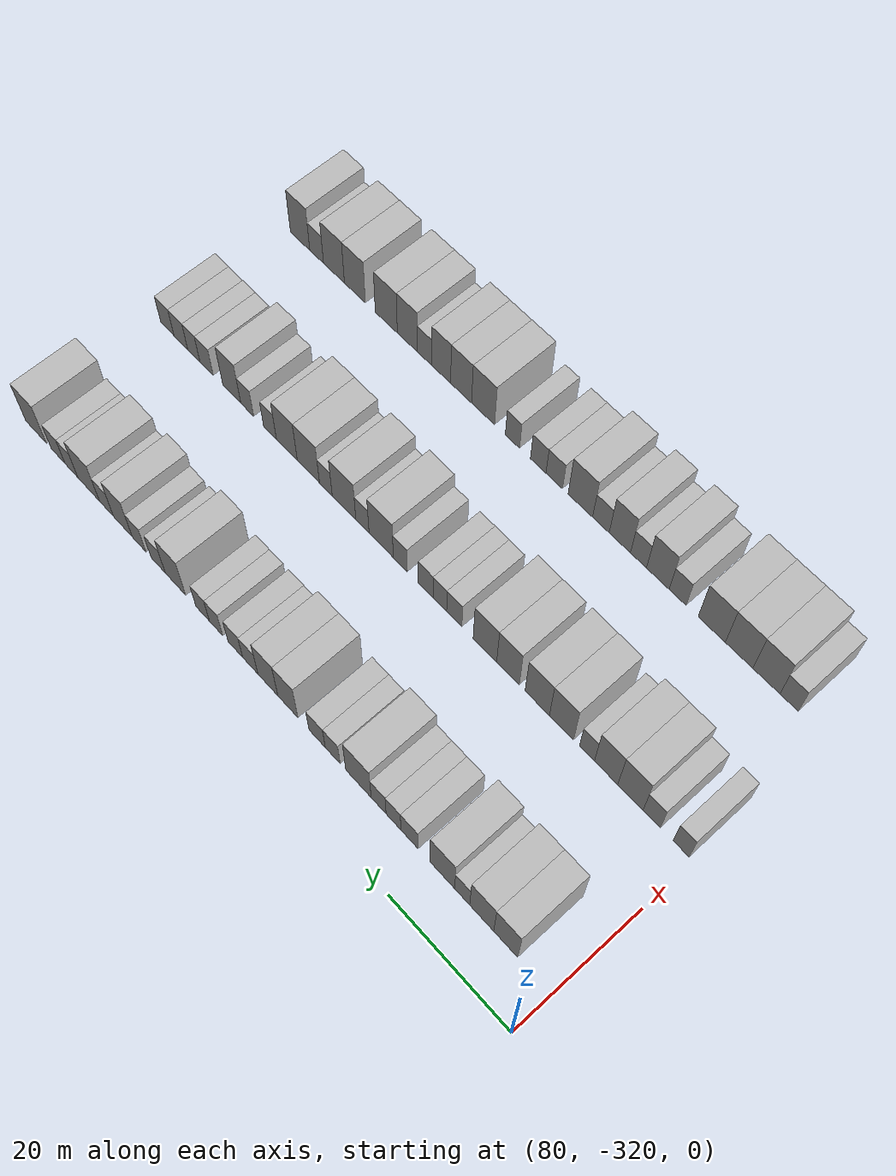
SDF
<sdf version="1.6">
 <world name="default">
  <model name="building_571">
   <static>1</static>
   <pose>91.0000 -312.6917 0 0.000000 0.000000 0.000000</pose>
   <link name="link">
    <pose>0 0 4.50 0 0 0</pose>
    <collision name="collision"><geometry><box><size>10.0000 3.8526 9.0000</size></box></geometry></collision>
    <visual name="visual">
     <cast_shadows>0</cast_shadows>
     <geometry><box><size>10.0000 3.8526 9.0000</size></box></geometry>
     <material>
      <script>
       <uri>model://HANNAS_wall/materials/scripts</uri>
       <uri>model://HANNAS_wall/materials/textures</uri>
       <name>vrc/HANNAS_wall</name>
      </script>
     </material>
    </visual>
   </link>
  </model>
  <model name="building_572">
   <static>1</static>
   <pose>91.0000 -308.8206 0 0.000000 0.000000 0.000000</pose>
   <link name="link">
    <pose>0 0 4.50 0 0 0</pose>
    <collision name="collision"><geometry><box><size>10.0000 3.8896 9.0000</size></box></geometry></collision>
    <visual name="visual">
     <cast_shadows>0</cast_shadows>
     <geometry><box><size>10.0000 3.8896 9.0000</size></box></geometry>
     <material>
      <script>
       <uri>model://HANNAS_wall/materials/scripts</uri>
       <uri>model://HANNAS_wall/materials/textures</uri>
       <name>vrc/HANNAS_wall</name>
      </script>
     </material>
    </visual>
   </link>
  </model>
  <model name="building_573">
   <static>1</static>
   <pose>91.0000 -305.6409 0 0.000000 0.000000 0.000000</pose>
   <link name="link">
    <pose>0 0 3.00 0 0 0</pose>
    <collision name="collision"><geometry><box><size>10.0000 2.4698 6.0000</size></box></geometry></collision>
    <visual name="visual">
     <cast_shadows>0</cast_shadows>
     <geometry><box><size>10.0000 2.4698 6.0000</size></box></geometry>
     <material>
      <script>
       <uri>model://HANNAS_wall/materials/scripts</uri>
       <uri>model://HANNAS_wall/materials/textures</uri>
       <name>vrc/HANNAS_wall</name>
      </script>
     </material>
    </visual>
   </link>
  </model>
  <model name="building_574">
   <static>1</static>
   <pose>91.0000 -302.3667 0 0.000000 0.000000 0.000000</pose>
   <link name="link">
    <pose>0 0 4.50 0 0 0</pose>
    <collision name="collision"><geometry><box><size>10.0000 4.0787 9.0000</size></box></geometry></collision>
    <visual name="visual">
     <cast_shadows>0</cast_shadows>
     <geometry><box><size>10.0000 4.0787 9.0000</size></box></geometry>
     <material>
      <script>
       <uri>model://HANNAS_wall/materials/scripts</uri>
       <uri>model://HANNAS_wall/materials/textures</uri>
       <name>vrc/HANNAS_wall</name>
      </script>
     </material>
    </visual>
   </link>
  </model>
  <model name="building_575">
   <static>1</static>
   <pose>91.0000 -296.8645 0 0.000000 0.000000 0.000000</pose>
   <link name="link">
    <pose>0 0 3.00 0 0 0</pose>
    <collision name="collision"><geometry><box><size>10.0000 2.9255 6.0000</size></box></geometry></collision>
    <visual name="visual">
     <cast_shadows>0</cast_shadows>
     <geometry><box><size>10.0000 2.9255 6.0000</size></box></geometry>
     <material>
      <script>
       <uri>model://HANNAS_wall/materials/scripts</uri>
       <uri>model://HANNAS_wall/materials/textures</uri>
       <name>vrc/HANNAS_wall</name>
      </script>
     </material>
    </visual>
   </link>
  </model>
  <model name="building_576">
   <static>1</static>
   <pose>91.0000 -294.1377 0 0.000000 0.000000 0.000000</pose>
   <link name="link">
    <pose>0 0 3.00 0 0 0</pose>
    <collision name="collision"><geometry><box><size>10.0000 2.5281 6.0000</size></box></geometry></collision>
    <visual name="visual">
     <cast_shadows>0</cast_shadows>
     <geometry><box><size>10.0000 2.5281 6.0000</size></box></geometry>
     <material>
      <script>
       <uri>model://HANNAS_wall/materials/scripts</uri>
       <uri>model://HANNAS_wall/materials/textures</uri>
       <name>vrc/HANNAS_wall</name>
      </script>
     </material>
    </visual>
   </link>
  </model>
  <model name="building_577">
   <static>1</static>
   <pose>91.0000 -291.5876 0 0.000000 0.000000 0.000000</pose>
   <link name="link">
    <pose>0 0 3.00 0 0 0</pose>
    <collision name="collision"><geometry><box><size>10.0000 2.5721 6.0000</size></box></geometry></collision>
    <visual name="visual">
     <cast_shadows>0</cast_shadows>
     <geometry><box><size>10.0000 2.5721 6.0000</size></box></geometry>
     <material>
      <script>
       <uri>model://HANNAS_wall/materials/scripts</uri>
       <uri>model://HANNAS_wall/materials/textures</uri>
       <name>vrc/HANNAS_wall</name>
      </script>
     </material>
    </visual>
   </link>
  </model>
  <model name="building_578">
   <static>1</static>
   <pose>91.0000 -288.0837 0 0.000000 0.000000 0.000000</pose>
   <link name="link">
    <pose>0 0 4.50 0 0 0</pose>
    <collision name="collision"><geometry><box><size>10.0000 4.4356 9.0000</size></box></geometry></collision>
    <visual name="visual">
     <cast_shadows>0</cast_shadows>
     <geometry><box><size>10.0000 4.4356 9.0000</size></box></geometry>
     <material>
      <script>
       <uri>model://HANNAS_wall/materials/scripts</uri>
       <uri>model://HANNAS_wall/materials/textures</uri>
       <name>vrc/HANNAS_wall</name>
      </script>
     </material>
    </visual>
   </link>
  </model>
  <model name="building_579">
   <static>1</static>
   <pose>91.0000 -283.5389 0 0.000000 0.000000 0.000000</pose>
   <link name="link">
    <pose>0 0 3.00 0 0 0</pose>
    <collision name="collision"><geometry><box><size>10.0000 2.6541 6.0000</size></box></geometry></collision>
    <visual name="visual">
     <cast_shadows>0</cast_shadows>
     <geometry><box><size>10.0000 2.6541 6.0000</size></box></geometry>
     <material>
      <script>
       <uri>model://HANNAS_wall/materials/scripts</uri>
       <uri>model://HANNAS_wall/materials/textures</uri>
       <name>vrc/HANNAS_wall</name>
      </script>
     </material>
    </visual>
   </link>
  </model>
  <model name="building_580">
   <static>1</static>
   <pose>91.0000 -280.7613 0 0.000000 0.000000 0.000000</pose>
   <link name="link">
    <pose>0 0 3.00 0 0 0</pose>
    <collision name="collision"><geometry><box><size>10.0000 2.9010 6.0000</size></box></geometry></collision>
    <visual name="visual">
     <cast_shadows>0</cast_shadows>
     <geometry><box><size>10.0000 2.9010 6.0000</size></box></geometry>
     <material>
      <script>
       <uri>model://HANNAS_wall/materials/scripts</uri>
       <uri>model://HANNAS_wall/materials/textures</uri>
       <name>vrc/HANNAS_wall</name>
      </script>
     </material>
    </visual>
   </link>
  </model>
  <model name="building_581">
   <static>1</static>
   <pose>91.0000 -275.4876 0 0.000000 0.000000 0.000000</pose>
   <link name="link">
    <pose>0 0 4.50 0 0 0</pose>
    <collision name="collision"><geometry><box><size>10.0000 3.6465 9.0000</size></box></geometry></collision>
    <visual name="visual">
     <cast_shadows>0</cast_shadows>
     <geometry><box><size>10.0000 3.6465 9.0000</size></box></geometry>
     <material>
      <script>
       <uri>model://HANNAS_wall/materials/scripts</uri>
       <uri>model://HANNAS_wall/materials/textures</uri>
       <name>vrc/HANNAS_wall</name>
      </script>
     </material>
    </visual>
   </link>
  </model>
  <model name="building_582">
   <static>1</static>
   <pose>91.0000 -271.8111 0 0.000000 0.000000 0.000000</pose>
   <link name="link">
    <pose>0 0 4.50 0 0 0</pose>
    <collision name="collision"><geometry><box><size>10.0000 3.7064 9.0000</size></box></geometry></collision>
    <visual name="visual">
     <cast_shadows>0</cast_shadows>
     <geometry><box><size>10.0000 3.7064 9.0000</size></box></geometry>
     <material>
      <script>
       <uri>model://HANNAS_wall/materials/scripts</uri>
       <uri>model://HANNAS_wall/materials/textures</uri>
       <name>vrc/HANNAS_wall</name>
      </script>
     </material>
    </visual>
   </link>
  </model>
  <model name="building_583">
   <static>1</static>
   <pose>91.0000 -268.5519 0 0.000000 0.000000 0.000000</pose>
   <link name="link">
    <pose>0 0 3.00 0 0 0</pose>
    <collision name="collision"><geometry><box><size>10.0000 2.8119 6.0000</size></box></geometry></collision>
    <visual name="visual">
     <cast_shadows>0</cast_shadows>
     <geometry><box><size>10.0000 2.8119 6.0000</size></box></geometry>
     <material>
      <script>
       <uri>model://HANNAS_wall/materials/scripts</uri>
       <uri>model://HANNAS_wall/materials/textures</uri>
       <name>vrc/HANNAS_wall</name>
      </script>
     </material>
    </visual>
   </link>
  </model>
  <model name="building_584">
   <static>1</static>
   <pose>91.0000 -265.7531 0 0.000000 0.000000 0.000000</pose>
   <link name="link">
    <pose>0 0 3.00 0 0 0</pose>
    <collision name="collision"><geometry><box><size>10.0000 2.7857 6.0000</size></box></geometry></collision>
    <visual name="visual">
     <cast_shadows>0</cast_shadows>
     <geometry><box><size>10.0000 2.7857 6.0000</size></box></geometry>
     <material>
      <script>
       <uri>model://HANNAS_wall/materials/scripts</uri>
       <uri>model://HANNAS_wall/materials/textures</uri>
       <name>vrc/HANNAS_wall</name>
      </script>
     </material>
    </visual>
   </link>
  </model>
  <model name="building_585">
   <static>1</static>
   <pose>91.0000 -262.0981 0 0.000000 0.000000 0.000000</pose>
   <link name="link">
    <pose>0 0 3.00 0 0 0</pose>
    <collision name="collision"><geometry><box><size>10.0000 2.5244 6.0000</size></box></geometry></collision>
    <visual name="visual">
     <cast_shadows>0</cast_shadows>
     <geometry><box><size>10.0000 2.5244 6.0000</size></box></geometry>
     <material>
      <script>
       <uri>model://HANNAS_wall/materials/scripts</uri>
       <uri>model://HANNAS_wall/materials/textures</uri>
       <name>vrc/HANNAS_wall</name>
      </script>
     </material>
    </visual>
   </link>
  </model>
  <model name="building_586">
   <static>1</static>
   <pose>91.0000 -259.5345 0 0.000000 0.000000 0.000000</pose>
   <link name="link">
    <pose>0 0 3.00 0 0 0</pose>
    <collision name="collision"><geometry><box><size>10.0000 2.6028 6.0000</size></box></geometry></collision>
    <visual name="visual">
     <cast_shadows>0</cast_shadows>
     <geometry><box><size>10.0000 2.6028 6.0000</size></box></geometry>
     <material>
      <script>
       <uri>model://HANNAS_wall/materials/scripts</uri>
       <uri>model://HANNAS_wall/materials/textures</uri>
       <name>vrc/HANNAS_wall</name>
      </script>
     </material>
    </visual>
   </link>
  </model>
  <model name="building_587">
   <static>1</static>
   <pose>91.0000 -254.2357 0 0.000000 0.000000 0.000000</pose>
   <link name="link">
    <pose>0 0 4.50 0 0 0</pose>
    <collision name="collision"><geometry><box><size>10.0000 3.9948 9.0000</size></box></geometry></collision>
    <visual name="visual">
     <cast_shadows>0</cast_shadows>
     <geometry><box><size>10.0000 3.9948 9.0000</size></box></geometry>
     <material>
      <script>
       <uri>model://HANNAS_wall/materials/scripts</uri>
       <uri>model://HANNAS_wall/materials/textures</uri>
       <name>vrc/HANNAS_wall</name>
      </script>
     </material>
    </visual>
   </link>
  </model>
  <model name="building_588">
   <static>1</static>
   <pose>91.0000 -250.8298 0 0.000000 0.000000 0.000000</pose>
   <link name="link">
    <pose>0 0 3.00 0 0 0</pose>
    <collision name="collision"><geometry><box><size>10.0000 2.8172 6.0000</size></box></geometry></collision>
    <visual name="visual">
     <cast_shadows>0</cast_shadows>
     <geometry><box><size>10.0000 2.8172 6.0000</size></box></geometry>
     <material>
      <script>
       <uri>model://HANNAS_wall/materials/scripts</uri>
       <uri>model://HANNAS_wall/materials/textures</uri>
       <name>vrc/HANNAS_wall</name>
      </script>
     </material>
    </visual>
   </link>
  </model>
  <model name="building_589">
   <static>1</static>
   <pose>91.0000 -247.0542 0 0.000000 0.000000 0.000000</pose>
   <link name="link">
    <pose>0 0 3.00 0 0 0</pose>
    <collision name="collision"><geometry><box><size>10.0000 2.7340 6.0000</size></box></geometry></collision>
    <visual name="visual">
     <cast_shadows>0</cast_shadows>
     <geometry><box><size>10.0000 2.7340 6.0000</size></box></geometry>
     <material>
      <script>
       <uri>model://HANNAS_wall/materials/scripts</uri>
       <uri>model://HANNAS_wall/materials/textures</uri>
       <name>vrc/HANNAS_wall</name>
      </script>
     </material>
    </visual>
   </link>
  </model>
  <model name="building_590">
   <static>1</static>
   <pose>91.0000 -243.7830 0 0.000000 0.000000 0.000000</pose>
   <link name="link">
    <pose>0 0 4.50 0 0 0</pose>
    <collision name="collision"><geometry><box><size>10.0000 3.8084 9.0000</size></box></geometry></collision>
    <visual name="visual">
     <cast_shadows>0</cast_shadows>
     <geometry><box><size>10.0000 3.8084 9.0000</size></box></geometry>
     <material>
      <script>
       <uri>model://HANNAS_wall/materials/scripts</uri>
       <uri>model://HANNAS_wall/materials/textures</uri>
       <name>vrc/HANNAS_wall</name>
      </script>
     </material>
    </visual>
   </link>
  </model>
  <model name="building_591">
   <static>1</static>
   <pose>91.0000 -240.4488 0 0.000000 0.000000 0.000000</pose>
   <link name="link">
    <pose>0 0 3.00 0 0 0</pose>
    <collision name="collision"><geometry><box><size>10.0000 2.8601 6.0000</size></box></geometry></collision>
    <visual name="visual">
     <cast_shadows>0</cast_shadows>
     <geometry><box><size>10.0000 2.8601 6.0000</size></box></geometry>
     <material>
      <script>
       <uri>model://HANNAS_wall/materials/scripts</uri>
       <uri>model://HANNAS_wall/materials/textures</uri>
       <name>vrc/HANNAS_wall</name>
      </script>
     </material>
    </visual>
   </link>
  </model>
  <model name="building_592">
   <static>1</static>
   <pose>91.0000 -236.7715 0 0.000000 0.000000 0.000000</pose>
   <link name="link">
    <pose>0 0 4.50 0 0 0</pose>
    <collision name="collision"><geometry><box><size>10.0000 4.4945 9.0000</size></box></geometry></collision>
    <visual name="visual">
     <cast_shadows>0</cast_shadows>
     <geometry><box><size>10.0000 4.4945 9.0000</size></box></geometry>
     <material>
      <script>
       <uri>model://HANNAS_wall/materials/scripts</uri>
       <uri>model://HANNAS_wall/materials/textures</uri>
       <name>vrc/HANNAS_wall</name>
      </script>
     </material>
    </visual>
   </link>
  </model>
  <model name="building_593">
   <static>1</static>
   <pose>91.0000 -233.1801 0 0.000000 0.000000 0.000000</pose>
   <link name="link">
    <pose>0 0 3.00 0 0 0</pose>
    <collision name="collision"><geometry><box><size>10.0000 2.6881 6.0000</size></box></geometry></collision>
    <visual name="visual">
     <cast_shadows>0</cast_shadows>
     <geometry><box><size>10.0000 2.6881 6.0000</size></box></geometry>
     <material>
      <script>
       <uri>model://HANNAS_wall/materials/scripts</uri>
       <uri>model://HANNAS_wall/materials/textures</uri>
       <name>vrc/HANNAS_wall</name>
      </script>
     </material>
    </visual>
   </link>
  </model>
  <model name="building_594">
   <static>1</static>
   <pose>91.0000 -230.3773 0 0.000000 0.000000 0.000000</pose>
   <link name="link">
    <pose>0 0 3.00 0 0 0</pose>
    <collision name="collision"><geometry><box><size>10.0000 2.9175 6.0000</size></box></geometry></collision>
    <visual name="visual">
     <cast_shadows>0</cast_shadows>
     <geometry><box><size>10.0000 2.9175 6.0000</size></box></geometry>
     <material>
      <script>
       <uri>model://HANNAS_wall/materials/scripts</uri>
       <uri>model://HANNAS_wall/materials/textures</uri>
       <name>vrc/HANNAS_wall</name>
      </script>
     </material>
    </visual>
   </link>
  </model>
  <model name="building_595">
   <static>1</static>
   <pose>91.0000 -225.6936 0 0.000000 0.000000 0.000000</pose>
   <link name="link">
    <pose>0 0 4.50 0 0 0</pose>
    <collision name="collision"><geometry><box><size>10.0000 4.4499 9.0000</size></box></geometry></collision>
    <visual name="visual">
     <cast_shadows>0</cast_shadows>
     <geometry><box><size>10.0000 4.4499 9.0000</size></box></geometry>
     <material>
      <script>
       <uri>model://HANNAS_wall/materials/scripts</uri>
       <uri>model://HANNAS_wall/materials/textures</uri>
       <name>vrc/HANNAS_wall</name>
      </script>
     </material>
    </visual>
   </link>
  </model>
  <model name="building_756">
   <static>1</static>
   <pose>113.0000 -318.1459 0 0.000000 0.000000 0.000000</pose>
   <link name="link">
    <pose>0 0 3.00 0 0 0</pose>
    <collision name="collision"><geometry><box><size>10.0000 2.5338 6.0000</size></box></geometry></collision>
    <visual name="visual">
     <cast_shadows>0</cast_shadows>
     <geometry><box><size>10.0000 2.5338 6.0000</size></box></geometry>
     <material>
      <script>
       <uri>model://HANNAS_wall/materials/scripts</uri>
       <uri>model://HANNAS_wall/materials/textures</uri>
       <name>vrc/HANNAS_wall</name>
      </script>
     </material>
    </visual>
   </link>
  </model>
  <model name="building_757">
   <static>1</static>
   <pose>113.0000 -313.5029 0 0.000000 0.000000 0.000000</pose>
   <link name="link">
    <pose>0 0 3.00 0 0 0</pose>
    <collision name="collision"><geometry><box><size>10.0000 2.7521 6.0000</size></box></geometry></collision>
    <visual name="visual">
     <cast_shadows>0</cast_shadows>
     <geometry><box><size>10.0000 2.7521 6.0000</size></box></geometry>
     <material>
      <script>
       <uri>model://HANNAS_wall/materials/scripts</uri>
       <uri>model://HANNAS_wall/materials/textures</uri>
       <name>vrc/HANNAS_wall</name>
      </script>
     </material>
    </visual>
   </link>
  </model>
  <model name="building_758">
   <static>1</static>
   <pose>113.0000 -310.0856 0 0.000000 0.000000 0.000000</pose>
   <link name="link">
    <pose>0 0 4.50 0 0 0</pose>
    <collision name="collision"><geometry><box><size>10.0000 4.0826 9.0000</size></box></geometry></collision>
    <visual name="visual">
     <cast_shadows>0</cast_shadows>
     <geometry><box><size>10.0000 4.0826 9.0000</size></box></geometry>
     <material>
      <script>
       <uri>model://HANNAS_wall/materials/scripts</uri>
       <uri>model://HANNAS_wall/materials/textures</uri>
       <name>vrc/HANNAS_wall</name>
      </script>
     </material>
    </visual>
   </link>
  </model>
  <model name="building_759">
   <static>1</static>
   <pose>113.0000 -306.1435 0 0.000000 0.000000 0.000000</pose>
   <link name="link">
    <pose>0 0 4.50 0 0 0</pose>
    <collision name="collision"><geometry><box><size>10.0000 3.8015 9.0000</size></box></geometry></collision>
    <visual name="visual">
     <cast_shadows>0</cast_shadows>
     <geometry><box><size>10.0000 3.8015 9.0000</size></box></geometry>
     <material>
      <script>
       <uri>model://HANNAS_wall/materials/scripts</uri>
       <uri>model://HANNAS_wall/materials/textures</uri>
       <name>vrc/HANNAS_wall</name>
      </script>
     </material>
    </visual>
   </link>
  </model>
  <model name="building_760">
   <static>1</static>
   <pose>113.0000 -303.0140 0 0.000000 0.000000 0.000000</pose>
   <link name="link">
    <pose>0 0 3.00 0 0 0</pose>
    <collision name="collision"><geometry><box><size>10.0000 2.4574 6.0000</size></box></geometry></collision>
    <visual name="visual">
     <cast_shadows>0</cast_shadows>
     <geometry><box><size>10.0000 2.4574 6.0000</size></box></geometry>
     <material>
      <script>
       <uri>model://HANNAS_wall/materials/scripts</uri>
       <uri>model://HANNAS_wall/materials/textures</uri>
       <name>vrc/HANNAS_wall</name>
      </script>
     </material>
    </visual>
   </link>
  </model>
  <model name="building_761">
   <static>1</static>
   <pose>113.0000 -298.7703 0 0.000000 0.000000 0.000000</pose>
   <link name="link">
    <pose>0 0 4.50 0 0 0</pose>
    <collision name="collision"><geometry><box><size>10.0000 4.0300 9.0000</size></box></geometry></collision>
    <visual name="visual">
     <cast_shadows>0</cast_shadows>
     <geometry><box><size>10.0000 4.0300 9.0000</size></box></geometry>
     <material>
      <script>
       <uri>model://HANNAS_wall/materials/scripts</uri>
       <uri>model://HANNAS_wall/materials/textures</uri>
       <name>vrc/HANNAS_wall</name>
      </script>
     </material>
    </visual>
   </link>
  </model>
  <model name="building_762">
   <static>1</static>
   <pose>113.0000 -294.6878 0 0.000000 0.000000 0.000000</pose>
   <link name="link">
    <pose>0 0 4.50 0 0 0</pose>
    <collision name="collision"><geometry><box><size>10.0000 4.1350 9.0000</size></box></geometry></collision>
    <visual name="visual">
     <cast_shadows>0</cast_shadows>
     <geometry><box><size>10.0000 4.1350 9.0000</size></box></geometry>
     <material>
      <script>
       <uri>model://HANNAS_wall/materials/scripts</uri>
       <uri>model://HANNAS_wall/materials/textures</uri>
       <name>vrc/HANNAS_wall</name>
      </script>
     </material>
    </visual>
   </link>
  </model>
  <model name="building_763">
   <static>1</static>
   <pose>113.0000 -289.6768 0 0.000000 0.000000 0.000000</pose>
   <link name="link">
    <pose>0 0 4.50 0 0 0</pose>
    <collision name="collision"><geometry><box><size>10.0000 3.8871 9.0000</size></box></geometry></collision>
    <visual name="visual">
     <cast_shadows>0</cast_shadows>
     <geometry><box><size>10.0000 3.8871 9.0000</size></box></geometry>
     <material>
      <script>
       <uri>model://HANNAS_wall/materials/scripts</uri>
       <uri>model://HANNAS_wall/materials/textures</uri>
       <name>vrc/HANNAS_wall</name>
      </script>
     </material>
    </visual>
   </link>
  </model>
  <model name="building_764">
   <static>1</static>
   <pose>113.0000 -285.6799 0 0.000000 0.000000 0.000000</pose>
   <link name="link">
    <pose>0 0 4.50 0 0 0</pose>
    <collision name="collision"><geometry><box><size>10.0000 4.1067 9.0000</size></box></geometry></collision>
    <visual name="visual">
     <cast_shadows>0</cast_shadows>
     <geometry><box><size>10.0000 4.1067 9.0000</size></box></geometry>
     <material>
      <script>
       <uri>model://HANNAS_wall/materials/scripts</uri>
       <uri>model://HANNAS_wall/materials/textures</uri>
       <name>vrc/HANNAS_wall</name>
      </script>
     </material>
    </visual>
   </link>
  </model>
  <model name="building_765">
   <static>1</static>
   <pose>113.0000 -280.2777 0 0.000000 0.000000 0.000000</pose>
   <link name="link">
    <pose>0 0 3.00 0 0 0</pose>
    <collision name="collision"><geometry><box><size>10.0000 2.6977 6.0000</size></box></geometry></collision>
    <visual name="visual">
     <cast_shadows>0</cast_shadows>
     <geometry><box><size>10.0000 2.6977 6.0000</size></box></geometry>
     <material>
      <script>
       <uri>model://HANNAS_wall/materials/scripts</uri>
       <uri>model://HANNAS_wall/materials/textures</uri>
       <name>vrc/HANNAS_wall</name>
      </script>
     </material>
    </visual>
   </link>
  </model>
  <model name="building_766">
   <static>1</static>
   <pose>113.0000 -277.7073 0 0.000000 0.000000 0.000000</pose>
   <link name="link">
    <pose>0 0 3.00 0 0 0</pose>
    <collision name="collision"><geometry><box><size>10.0000 2.4432 6.0000</size></box></geometry></collision>
    <visual name="visual">
     <cast_shadows>0</cast_shadows>
     <geometry><box><size>10.0000 2.4432 6.0000</size></box></geometry>
     <material>
      <script>
       <uri>model://HANNAS_wall/materials/scripts</uri>
       <uri>model://HANNAS_wall/materials/textures</uri>
       <name>vrc/HANNAS_wall</name>
      </script>
     </material>
    </visual>
   </link>
  </model>
  <model name="building_767">
   <static>1</static>
   <pose>113.0000 -275.1553 0 0.000000 0.000000 0.000000</pose>
   <link name="link">
    <pose>0 0 3.00 0 0 0</pose>
    <collision name="collision"><geometry><box><size>10.0000 2.6608 6.0000</size></box></geometry></collision>
    <visual name="visual">
     <cast_shadows>0</cast_shadows>
     <geometry><box><size>10.0000 2.6608 6.0000</size></box></geometry>
     <material>
      <script>
       <uri>model://HANNAS_wall/materials/scripts</uri>
       <uri>model://HANNAS_wall/materials/textures</uri>
       <name>vrc/HANNAS_wall</name>
      </script>
     </material>
    </visual>
   </link>
  </model>
  <model name="building_768">
   <static>1</static>
   <pose>113.0000 -270.5395 0 0.000000 0.000000 0.000000</pose>
   <link name="link">
    <pose>0 0 3.00 0 0 0</pose>
    <collision name="collision"><geometry><box><size>10.0000 2.5708 6.0000</size></box></geometry></collision>
    <visual name="visual">
     <cast_shadows>0</cast_shadows>
     <geometry><box><size>10.0000 2.5708 6.0000</size></box></geometry>
     <material>
      <script>
       <uri>model://HANNAS_wall/materials/scripts</uri>
       <uri>model://HANNAS_wall/materials/textures</uri>
       <name>vrc/HANNAS_wall</name>
      </script>
     </material>
    </visual>
   </link>
  </model>
  <model name="building_769">
   <static>1</static>
   <pose>113.0000 -267.0043 0 0.000000 0.000000 0.000000</pose>
   <link name="link">
    <pose>0 0 4.50 0 0 0</pose>
    <collision name="collision"><geometry><box><size>10.0000 4.4996 9.0000</size></box></geometry></collision>
    <visual name="visual">
     <cast_shadows>0</cast_shadows>
     <geometry><box><size>10.0000 4.4996 9.0000</size></box></geometry>
     <material>
      <script>
       <uri>model://HANNAS_wall/materials/scripts</uri>
       <uri>model://HANNAS_wall/materials/textures</uri>
       <name>vrc/HANNAS_wall</name>
      </script>
     </material>
    </visual>
   </link>
  </model>
  <model name="building_770">
   <static>1</static>
   <pose>113.0000 -263.5102 0 0.000000 0.000000 0.000000</pose>
   <link name="link">
    <pose>0 0 3.00 0 0 0</pose>
    <collision name="collision"><geometry><box><size>10.0000 2.4886 6.0000</size></box></geometry></collision>
    <visual name="visual">
     <cast_shadows>0</cast_shadows>
     <geometry><box><size>10.0000 2.4886 6.0000</size></box></geometry>
     <material>
      <script>
       <uri>model://HANNAS_wall/materials/scripts</uri>
       <uri>model://HANNAS_wall/materials/textures</uri>
       <name>vrc/HANNAS_wall</name>
      </script>
     </material>
    </visual>
   </link>
  </model>
  <model name="building_771">
   <static>1</static>
   <pose>113.0000 -260.0223 0 0.000000 0.000000 0.000000</pose>
   <link name="link">
    <pose>0 0 4.50 0 0 0</pose>
    <collision name="collision"><geometry><box><size>10.0000 4.4872 9.0000</size></box></geometry></collision>
    <visual name="visual">
     <cast_shadows>0</cast_shadows>
     <geometry><box><size>10.0000 4.4872 9.0000</size></box></geometry>
     <material>
      <script>
       <uri>model://HANNAS_wall/materials/scripts</uri>
       <uri>model://HANNAS_wall/materials/textures</uri>
       <name>vrc/HANNAS_wall</name>
      </script>
     </material>
    </visual>
   </link>
  </model>
  <model name="building_772">
   <static>1</static>
   <pose>113.0000 -256.5583 0 0.000000 0.000000 0.000000</pose>
   <link name="link">
    <pose>0 0 3.00 0 0 0</pose>
    <collision name="collision"><geometry><box><size>10.0000 2.4408 6.0000</size></box></geometry></collision>
    <visual name="visual">
     <cast_shadows>0</cast_shadows>
     <geometry><box><size>10.0000 2.4408 6.0000</size></box></geometry>
     <material>
      <script>
       <uri>model://HANNAS_wall/materials/scripts</uri>
       <uri>model://HANNAS_wall/materials/textures</uri>
       <name>vrc/HANNAS_wall</name>
      </script>
     </material>
    </visual>
   </link>
  </model>
  <model name="building_773">
   <static>1</static>
   <pose>113.0000 -253.1836 0 0.000000 0.000000 0.000000</pose>
   <link name="link">
    <pose>0 0 4.50 0 0 0</pose>
    <collision name="collision"><geometry><box><size>10.0000 4.3086 9.0000</size></box></geometry></collision>
    <visual name="visual">
     <cast_shadows>0</cast_shadows>
     <geometry><box><size>10.0000 4.3086 9.0000</size></box></geometry>
     <material>
      <script>
       <uri>model://HANNAS_wall/materials/scripts</uri>
       <uri>model://HANNAS_wall/materials/textures</uri>
       <name>vrc/HANNAS_wall</name>
      </script>
     </material>
    </visual>
   </link>
  </model>
  <model name="building_774">
   <static>1</static>
   <pose>113.0000 -248.9675 0 0.000000 0.000000 0.000000</pose>
   <link name="link">
    <pose>0 0 4.50 0 0 0</pose>
    <collision name="collision"><geometry><box><size>10.0000 4.1238 9.0000</size></box></geometry></collision>
    <visual name="visual">
     <cast_shadows>0</cast_shadows>
     <geometry><box><size>10.0000 4.1238 9.0000</size></box></geometry>
     <material>
      <script>
       <uri>model://HANNAS_wall/materials/scripts</uri>
       <uri>model://HANNAS_wall/materials/textures</uri>
       <name>vrc/HANNAS_wall</name>
      </script>
     </material>
    </visual>
   </link>
  </model>
  <model name="building_775">
   <static>1</static>
   <pose>113.0000 -245.6397 0 0.000000 0.000000 0.000000</pose>
   <link name="link">
    <pose>0 0 3.00 0 0 0</pose>
    <collision name="collision"><geometry><box><size>10.0000 2.5318 6.0000</size></box></geometry></collision>
    <visual name="visual">
     <cast_shadows>0</cast_shadows>
     <geometry><box><size>10.0000 2.5318 6.0000</size></box></geometry>
     <material>
      <script>
       <uri>model://HANNAS_wall/materials/scripts</uri>
       <uri>model://HANNAS_wall/materials/textures</uri>
       <name>vrc/HANNAS_wall</name>
      </script>
     </material>
    </visual>
   </link>
  </model>
  <model name="building_776">
   <static>1</static>
   <pose>113.0000 -241.0786 0 0.000000 0.000000 0.000000</pose>
   <link name="link">
    <pose>0 0 3.00 0 0 0</pose>
    <collision name="collision"><geometry><box><size>10.0000 2.5904 6.0000</size></box></geometry></collision>
    <visual name="visual">
     <cast_shadows>0</cast_shadows>
     <geometry><box><size>10.0000 2.5904 6.0000</size></box></geometry>
     <material>
      <script>
       <uri>model://HANNAS_wall/materials/scripts</uri>
       <uri>model://HANNAS_wall/materials/textures</uri>
       <name>vrc/HANNAS_wall</name>
      </script>
     </material>
    </visual>
   </link>
  </model>
  <model name="building_777">
   <static>1</static>
   <pose>113.0000 -237.9609 0 0.000000 0.000000 0.000000</pose>
   <link name="link">
    <pose>0 0 4.50 0 0 0</pose>
    <collision name="collision"><geometry><box><size>10.0000 3.6450 9.0000</size></box></geometry></collision>
    <visual name="visual">
     <cast_shadows>0</cast_shadows>
     <geometry><box><size>10.0000 3.6450 9.0000</size></box></geometry>
     <material>
      <script>
       <uri>model://HANNAS_wall/materials/scripts</uri>
       <uri>model://HANNAS_wall/materials/textures</uri>
       <name>vrc/HANNAS_wall</name>
      </script>
     </material>
    </visual>
   </link>
  </model>
  <model name="building_778">
   <static>1</static>
   <pose>113.0000 -232.7647 0 0.000000 0.000000 0.000000</pose>
   <link name="link">
    <pose>0 0 3.00 0 0 0</pose>
    <collision name="collision"><geometry><box><size>10.0000 2.7474 6.0000</size></box></geometry></collision>
    <visual name="visual">
     <cast_shadows>0</cast_shadows>
     <geometry><box><size>10.0000 2.7474 6.0000</size></box></geometry>
     <material>
      <script>
       <uri>model://HANNAS_wall/materials/scripts</uri>
       <uri>model://HANNAS_wall/materials/textures</uri>
       <name>vrc/HANNAS_wall</name>
      </script>
     </material>
    </visual>
   </link>
  </model>
  <model name="building_779">
   <static>1</static>
   <pose>113.0000 -230.1244 0 0.000000 0.000000 0.000000</pose>
   <link name="link">
    <pose>0 0 3.00 0 0 0</pose>
    <collision name="collision"><geometry><box><size>10.0000 2.5332 6.0000</size></box></geometry></collision>
    <visual name="visual">
     <cast_shadows>0</cast_shadows>
     <geometry><box><size>10.0000 2.5332 6.0000</size></box></geometry>
     <material>
      <script>
       <uri>model://HANNAS_wall/materials/scripts</uri>
       <uri>model://HANNAS_wall/materials/textures</uri>
       <name>vrc/HANNAS_wall</name>
      </script>
     </material>
    </visual>
   </link>
  </model>
  <model name="building_780">
   <static>1</static>
   <pose>113.0000 -227.4033 0 0.000000 0.000000 0.000000</pose>
   <link name="link">
    <pose>0 0 3.00 0 0 0</pose>
    <collision name="collision"><geometry><box><size>10.0000 2.9089 6.0000</size></box></geometry></collision>
    <visual name="visual">
     <cast_shadows>0</cast_shadows>
     <geometry><box><size>10.0000 2.9089 6.0000</size></box></geometry>
     <material>
      <script>
       <uri>model://HANNAS_wall/materials/scripts</uri>
       <uri>model://HANNAS_wall/materials/textures</uri>
       <name>vrc/HANNAS_wall</name>
      </script>
     </material>
    </visual>
   </link>
  </model>
  <model name="building_781">
   <static>1</static>
   <pose>113.0000 -224.5614 0 0.000000 0.000000 0.000000</pose>
   <link name="link">
    <pose>0 0 3.00 0 0 0</pose>
    <collision name="collision"><geometry><box><size>10.0000 2.7749 6.0000</size></box></geometry></collision>
    <visual name="visual">
     <cast_shadows>0</cast_shadows>
     <geometry><box><size>10.0000 2.7749 6.0000</size></box></geometry>
     <material>
      <script>
       <uri>model://HANNAS_wall/materials/scripts</uri>
       <uri>model://HANNAS_wall/materials/textures</uri>
       <name>vrc/HANNAS_wall</name>
      </script>
     </material>
    </visual>
   </link>
  </model>
  <model name="building_944">
   <static>1</static>
   <pose>135.0000 -314.4293 0 0.000000 0.000000 0.000000</pose>
   <link name="link">
    <pose>0 0 3.00 0 0 0</pose>
    <collision name="collision"><geometry><box><size>10.0000 2.9099 6.0000</size></box></geometry></collision>
    <visual name="visual">
     <cast_shadows>0</cast_shadows>
     <geometry><box><size>10.0000 2.9099 6.0000</size></box></geometry>
     <material>
      <script>
       <uri>model://HANNAS_wall/materials/scripts</uri>
       <uri>model://HANNAS_wall/materials/textures</uri>
       <name>vrc/HANNAS_wall</name>
      </script>
     </material>
    </visual>
   </link>
  </model>
  <model name="building_945">
   <static>1</static>
   <pose>135.0000 -310.8103 0 0.000000 0.000000 0.000000</pose>
   <link name="link">
    <pose>0 0 4.50 0 0 0</pose>
    <collision name="collision"><geometry><box><size>10.0000 4.3283 9.0000</size></box></geometry></collision>
    <visual name="visual">
     <cast_shadows>0</cast_shadows>
     <geometry><box><size>10.0000 4.3283 9.0000</size></box></geometry>
     <material>
      <script>
       <uri>model://HANNAS_wall/materials/scripts</uri>
       <uri>model://HANNAS_wall/materials/textures</uri>
       <name>vrc/HANNAS_wall</name>
      </script>
     </material>
    </visual>
   </link>
  </model>
  <model name="building_946">
   <static>1</static>
   <pose>135.0000 -306.4041 0 0.000000 0.000000 0.000000</pose>
   <link name="link">
    <pose>0 0 4.50 0 0 0</pose>
    <collision name="collision"><geometry><box><size>10.0000 4.4840 9.0000</size></box></geometry></collision>
    <visual name="visual">
     <cast_shadows>0</cast_shadows>
     <geometry><box><size>10.0000 4.4840 9.0000</size></box></geometry>
     <material>
      <script>
       <uri>model://HANNAS_wall/materials/scripts</uri>
       <uri>model://HANNAS_wall/materials/textures</uri>
       <name>vrc/HANNAS_wall</name>
      </script>
     </material>
    </visual>
   </link>
  </model>
  <model name="building_947">
   <static>1</static>
   <pose>135.0000 -301.9174 0 0.000000 0.000000 0.000000</pose>
   <link name="link">
    <pose>0 0 4.50 0 0 0</pose>
    <collision name="collision"><geometry><box><size>10.0000 4.4894 9.0000</size></box></geometry></collision>
    <visual name="visual">
     <cast_shadows>0</cast_shadows>
     <geometry><box><size>10.0000 4.4894 9.0000</size></box></geometry>
     <material>
      <script>
       <uri>model://HANNAS_wall/materials/scripts</uri>
       <uri>model://HANNAS_wall/materials/textures</uri>
       <name>vrc/HANNAS_wall</name>
      </script>
     </material>
    </visual>
   </link>
  </model>
  <model name="building_948">
   <static>1</static>
   <pose>135.0000 -296.2498 0 0.000000 0.000000 0.000000</pose>
   <link name="link">
    <pose>0 0 3.00 0 0 0</pose>
    <collision name="collision"><geometry><box><size>10.0000 2.8457 6.0000</size></box></geometry></collision>
    <visual name="visual">
     <cast_shadows>0</cast_shadows>
     <geometry><box><size>10.0000 2.8457 6.0000</size></box></geometry>
     <material>
      <script>
       <uri>model://HANNAS_wall/materials/scripts</uri>
       <uri>model://HANNAS_wall/materials/textures</uri>
       <name>vrc/HANNAS_wall</name>
      </script>
     </material>
    </visual>
   </link>
  </model>
  <model name="building_949">
   <static>1</static>
   <pose>135.0000 -292.8909 0 0.000000 0.000000 0.000000</pose>
   <link name="link">
    <pose>0 0 4.50 0 0 0</pose>
    <collision name="collision"><geometry><box><size>10.0000 3.8720 9.0000</size></box></geometry></collision>
    <visual name="visual">
     <cast_shadows>0</cast_shadows>
     <geometry><box><size>10.0000 3.8720 9.0000</size></box></geometry>
     <material>
      <script>
       <uri>model://HANNAS_wall/materials/scripts</uri>
       <uri>model://HANNAS_wall/materials/textures</uri>
       <name>vrc/HANNAS_wall</name>
      </script>
     </material>
    </visual>
   </link>
  </model>
  <model name="building_950">
   <static>1</static>
   <pose>135.0000 -289.5802 0 0.000000 0.000000 0.000000</pose>
   <link name="link">
    <pose>0 0 3.00 0 0 0</pose>
    <collision name="collision"><geometry><box><size>10.0000 2.7495 6.0000</size></box></geometry></collision>
    <visual name="visual">
     <cast_shadows>0</cast_shadows>
     <geometry><box><size>10.0000 2.7495 6.0000</size></box></geometry>
     <material>
      <script>
       <uri>model://HANNAS_wall/materials/scripts</uri>
       <uri>model://HANNAS_wall/materials/textures</uri>
       <name>vrc/HANNAS_wall</name>
      </script>
     </material>
    </visual>
   </link>
  </model>
  <model name="building_951">
   <static>1</static>
   <pose>135.0000 -286.3594 0 0.000000 0.000000 0.000000</pose>
   <link name="link">
    <pose>0 0 4.50 0 0 0</pose>
    <collision name="collision"><geometry><box><size>10.0000 3.6920 9.0000</size></box></geometry></collision>
    <visual name="visual">
     <cast_shadows>0</cast_shadows>
     <geometry><box><size>10.0000 3.6920 9.0000</size></box></geometry>
     <material>
      <script>
       <uri>model://HANNAS_wall/materials/scripts</uri>
       <uri>model://HANNAS_wall/materials/textures</uri>
       <name>vrc/HANNAS_wall</name>
      </script>
     </material>
    </visual>
   </link>
  </model>
  <model name="building_952">
   <static>1</static>
   <pose>135.0000 -283.0614 0 0.000000 0.000000 0.000000</pose>
   <link name="link">
    <pose>0 0 3.00 0 0 0</pose>
    <collision name="collision"><geometry><box><size>10.0000 2.9041 6.0000</size></box></geometry></collision>
    <visual name="visual">
     <cast_shadows>0</cast_shadows>
     <geometry><box><size>10.0000 2.9041 6.0000</size></box></geometry>
     <material>
      <script>
       <uri>model://HANNAS_wall/materials/scripts</uri>
       <uri>model://HANNAS_wall/materials/textures</uri>
       <name>vrc/HANNAS_wall</name>
      </script>
     </material>
    </visual>
   </link>
  </model>
  <model name="building_953">
   <static>1</static>
   <pose>135.0000 -279.4318 0 0.000000 0.000000 0.000000</pose>
   <link name="link">
    <pose>0 0 4.50 0 0 0</pose>
    <collision name="collision"><geometry><box><size>10.0000 4.3550 9.0000</size></box></geometry></collision>
    <visual name="visual">
     <cast_shadows>0</cast_shadows>
     <geometry><box><size>10.0000 4.3550 9.0000</size></box></geometry>
     <material>
      <script>
       <uri>model://HANNAS_wall/materials/scripts</uri>
       <uri>model://HANNAS_wall/materials/textures</uri>
       <name>vrc/HANNAS_wall</name>
      </script>
     </material>
    </visual>
   </link>
  </model>
  <model name="building_954">
   <static>1</static>
   <pose>135.0000 -274.7701 0 0.000000 0.000000 0.000000</pose>
   <link name="link">
    <pose>0 0 3.00 0 0 0</pose>
    <collision name="collision"><geometry><box><size>10.0000 2.9684 6.0000</size></box></geometry></collision>
    <visual name="visual">
     <cast_shadows>0</cast_shadows>
     <geometry><box><size>10.0000 2.9684 6.0000</size></box></geometry>
     <material>
      <script>
       <uri>model://HANNAS_wall/materials/scripts</uri>
       <uri>model://HANNAS_wall/materials/textures</uri>
       <name>vrc/HANNAS_wall</name>
      </script>
     </material>
    </visual>
   </link>
  </model>
  <model name="building_955">
   <static>1</static>
   <pose>135.0000 -271.8714 0 0.000000 0.000000 0.000000</pose>
   <link name="link">
    <pose>0 0 3.00 0 0 0</pose>
    <collision name="collision"><geometry><box><size>10.0000 2.8290 6.0000</size></box></geometry></collision>
    <visual name="visual">
     <cast_shadows>0</cast_shadows>
     <geometry><box><size>10.0000 2.8290 6.0000</size></box></geometry>
     <material>
      <script>
       <uri>model://HANNAS_wall/materials/scripts</uri>
       <uri>model://HANNAS_wall/materials/textures</uri>
       <name>vrc/HANNAS_wall</name>
      </script>
     </material>
    </visual>
   </link>
  </model>
  <model name="building_956">
   <static>1</static>
   <pose>135.0000 -267.1486 0 0.000000 0.000000 0.000000</pose>
   <link name="link">
    <pose>0 0 3.00 0 0 0</pose>
    <collision name="collision"><geometry><box><size>10.0000 2.6167 6.0000</size></box></geometry></collision>
    <visual name="visual">
     <cast_shadows>0</cast_shadows>
     <geometry><box><size>10.0000 2.6167 6.0000</size></box></geometry>
     <material>
      <script>
       <uri>model://HANNAS_wall/materials/scripts</uri>
       <uri>model://HANNAS_wall/materials/textures</uri>
       <name>vrc/HANNAS_wall</name>
      </script>
     </material>
    </visual>
   </link>
  </model>
  <model name="building_957">
   <static>1</static>
   <pose>135.0000 -261.6756 0 0.000000 0.000000 0.000000</pose>
   <link name="link">
    <pose>0 0 4.50 0 0 0</pose>
    <collision name="collision"><geometry><box><size>10.0000 4.3291 9.0000</size></box></geometry></collision>
    <visual name="visual">
     <cast_shadows>0</cast_shadows>
     <geometry><box><size>10.0000 4.3291 9.0000</size></box></geometry>
     <material>
      <script>
       <uri>model://HANNAS_wall/materials/scripts</uri>
       <uri>model://HANNAS_wall/materials/textures</uri>
       <name>vrc/HANNAS_wall</name>
      </script>
     </material>
    </visual>
   </link>
  </model>
  <model name="building_958">
   <static>1</static>
   <pose>135.0000 -257.5186 0 0.000000 0.000000 0.000000</pose>
   <link name="link">
    <pose>0 0 4.50 0 0 0</pose>
    <collision name="collision"><geometry><box><size>10.0000 3.9849 9.0000</size></box></geometry></collision>
    <visual name="visual">
     <cast_shadows>0</cast_shadows>
     <geometry><box><size>10.0000 3.9849 9.0000</size></box></geometry>
     <material>
      <script>
       <uri>model://HANNAS_wall/materials/scripts</uri>
       <uri>model://HANNAS_wall/materials/textures</uri>
       <name>vrc/HANNAS_wall</name>
      </script>
     </material>
    </visual>
   </link>
  </model>
  <model name="building_959">
   <static>1</static>
   <pose>135.0000 -253.7080 0 0.000000 0.000000 0.000000</pose>
   <link name="link">
    <pose>0 0 4.50 0 0 0</pose>
    <collision name="collision"><geometry><box><size>10.0000 3.6363 9.0000</size></box></geometry></collision>
    <visual name="visual">
     <cast_shadows>0</cast_shadows>
     <geometry><box><size>10.0000 3.6363 9.0000</size></box></geometry>
     <material>
      <script>
       <uri>model://HANNAS_wall/materials/scripts</uri>
       <uri>model://HANNAS_wall/materials/textures</uri>
       <name>vrc/HANNAS_wall</name>
      </script>
     </material>
    </visual>
   </link>
  </model>
  <model name="building_960">
   <static>1</static>
   <pose>135.0000 -250.5214 0 0.000000 0.000000 0.000000</pose>
   <link name="link">
    <pose>0 0 3.00 0 0 0</pose>
    <collision name="collision"><geometry><box><size>10.0000 2.7369 6.0000</size></box></geometry></collision>
    <visual name="visual">
     <cast_shadows>0</cast_shadows>
     <geometry><box><size>10.0000 2.7369 6.0000</size></box></geometry>
     <material>
      <script>
       <uri>model://HANNAS_wall/materials/scripts</uri>
       <uri>model://HANNAS_wall/materials/textures</uri>
       <name>vrc/HANNAS_wall</name>
      </script>
     </material>
    </visual>
   </link>
  </model>
  <model name="building_961">
   <static>1</static>
   <pose>135.0000 -247.1731 0 0.000000 0.000000 0.000000</pose>
   <link name="link">
    <pose>0 0 4.50 0 0 0</pose>
    <collision name="collision"><geometry><box><size>10.0000 3.9595 9.0000</size></box></geometry></collision>
    <visual name="visual">
     <cast_shadows>0</cast_shadows>
     <geometry><box><size>10.0000 3.9595 9.0000</size></box></geometry>
     <material>
      <script>
       <uri>model://HANNAS_wall/materials/scripts</uri>
       <uri>model://HANNAS_wall/materials/textures</uri>
       <name>vrc/HANNAS_wall</name>
      </script>
     </material>
    </visual>
   </link>
  </model>
  <model name="building_962">
   <static>1</static>
   <pose>135.0000 -243.0074 0 0.000000 0.000000 0.000000</pose>
   <link name="link">
    <pose>0 0 4.50 0 0 0</pose>
    <collision name="collision"><geometry><box><size>10.0000 4.3719 9.0000</size></box></geometry></collision>
    <visual name="visual">
     <cast_shadows>0</cast_shadows>
     <geometry><box><size>10.0000 4.3719 9.0000</size></box></geometry>
     <material>
      <script>
       <uri>model://HANNAS_wall/materials/scripts</uri>
       <uri>model://HANNAS_wall/materials/textures</uri>
       <name>vrc/HANNAS_wall</name>
      </script>
     </material>
    </visual>
   </link>
  </model>
  <model name="building_963">
   <static>1</static>
   <pose>135.0000 -236.7058 0 0.000000 0.000000 0.000000</pose>
   <link name="link">
    <pose>0 0 4.50 0 0 0</pose>
    <collision name="collision"><geometry><box><size>10.0000 4.2314 9.0000</size></box></geometry></collision>
    <visual name="visual">
     <cast_shadows>0</cast_shadows>
     <geometry><box><size>10.0000 4.2314 9.0000</size></box></geometry>
     <material>
      <script>
       <uri>model://HANNAS_wall/materials/scripts</uri>
       <uri>model://HANNAS_wall/materials/textures</uri>
       <name>vrc/HANNAS_wall</name>
      </script>
     </material>
    </visual>
   </link>
  </model>
  <model name="building_964">
   <static>1</static>
   <pose>135.0000 -232.4476 0 0.000000 0.000000 0.000000</pose>
   <link name="link">
    <pose>0 0 4.50 0 0 0</pose>
    <collision name="collision"><geometry><box><size>10.0000 4.2851 9.0000</size></box></geometry></collision>
    <visual name="visual">
     <cast_shadows>0</cast_shadows>
     <geometry><box><size>10.0000 4.2851 9.0000</size></box></geometry>
     <material>
      <script>
       <uri>model://HANNAS_wall/materials/scripts</uri>
       <uri>model://HANNAS_wall/materials/textures</uri>
       <name>vrc/HANNAS_wall</name>
      </script>
     </material>
    </visual>
   </link>
  </model>
  <model name="building_965">
   <static>1</static>
   <pose>135.0000 -228.8826 0 0.000000 0.000000 0.000000</pose>
   <link name="link">
    <pose>0 0 3.00 0 0 0</pose>
    <collision name="collision"><geometry><box><size>10.0000 2.8449 6.0000</size></box></geometry></collision>
    <visual name="visual">
     <cast_shadows>0</cast_shadows>
     <geometry><box><size>10.0000 2.8449 6.0000</size></box></geometry>
     <material>
      <script>
       <uri>model://HANNAS_wall/materials/scripts</uri>
       <uri>model://HANNAS_wall/materials/textures</uri>
       <name>vrc/HANNAS_wall</name>
      </script>
     </material>
    </visual>
   </link>
  </model>
  <model name="building_966">
   <static>1</static>
   <pose>135.0000 -225.4412 0 0.000000 0.000000 0.000000</pose>
   <link name="link">
    <pose>0 0 4.50 0 0 0</pose>
    <collision name="collision"><geometry><box><size>10.0000 4.0377 9.0000</size></box></geometry></collision>
    <visual name="visual">
     <cast_shadows>0</cast_shadows>
     <geometry><box><size>10.0000 4.0377 9.0000</size></box></geometry>
     <material>
      <script>
       <uri>model://HANNAS_wall/materials/scripts</uri>
       <uri>model://HANNAS_wall/materials/textures</uri>
       <name>vrc/HANNAS_wall</name>
      </script>
     </material>
    </visual>
   </link>
  </model>
 </world>
</sdf>
